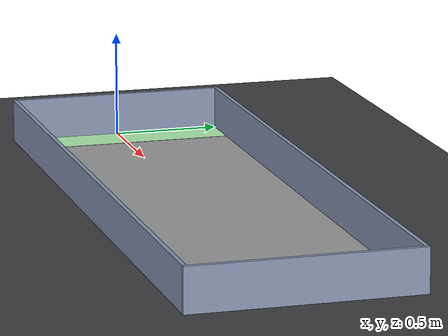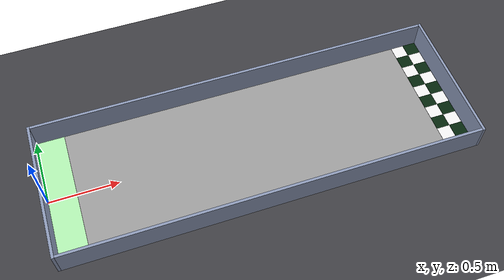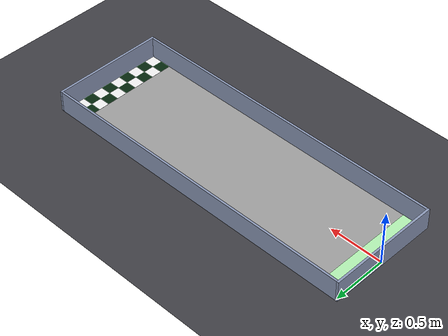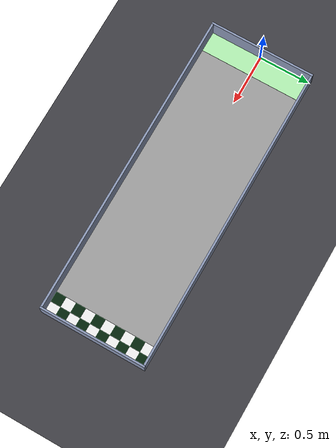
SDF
<?xml version="1.0" ?>
<sdf version="1.8">
  <world name="competition_arena">

    <physics name="1ms" type="ignored">
      <max_step_size>0.001</max_step_size>
      <real_time_factor>1.0</real_time_factor>
    </physics>

    <plugin filename="ignition-gazebo-physics-system"
            name="ignition::gazebo::systems::Physics" />
    <!-- Serves /world/competition_arena/create, which spawn_boxes calls. -->
    <plugin filename="ignition-gazebo-user-commands-system"
            name="ignition::gazebo::systems::UserCommands" />
    <plugin filename="ignition-gazebo-scene-broadcaster-system"
            name="ignition::gazebo::systems::SceneBroadcaster" />
    <!-- Renders the robot's camera. -->
    <plugin filename="ignition-gazebo-sensors-system"
            name="ignition::gazebo::systems::Sensors">
      <render_engine>ogre2</render_engine>
    </plugin>

    <!-- Runs the robot's IMU. -->
    <plugin filename="ignition-gazebo-imu-system"
            name="ignition::gazebo::systems::Imu" />

    <gravity>0 0 -9.8</gravity>

    <scene>
      <ambient>0.85 0.85 0.85 1</ambient>
      <background>0.80 0.82 0.86 1</background>
      <shadows>false</shadows>
    </scene>

    <!-- Bright and near-vertical with shadows off, so a box's colour does not depend
         on where it stands or which way the robot sees it from. -->
    <light type="directional" name="sun">
      <cast_shadows>false</cast_shadows>
      <pose>1.5 0 8 0 0 0</pose>
      <diffuse>0.9 0.9 0.9 1</diffuse>
      <specular>0.1 0.1 0.1 1</specular>
      <direction>-0.1 0.1 -0.95</direction>
    </light>

    <!-- Everything outside the track. -->
    <model name="ground_plane">
      <static>true</static>
      <link name="link">
        <collision name="collision">
          <geometry>
            <plane><normal>0 0 1</normal><size>20 20</size></plane>
          </geometry>
          <surface>
            <friction><ode><mu>1.0</mu><mu2>1.0</mu2></ode></friction>
          </surface>
        </collision>
        <visual name="visual">
          <geometry>
            <plane><normal>0 0 1</normal><size>20 20</size></plane>
          </geometry>
          <material>
            <ambient>0.25 0.25 0.27 1</ambient>
            <diffuse>0.25 0.25 0.27 1</diffuse>
            <specular>0 0 0 1</specular>
          </material>
        </visual>
      </link>
    </model>

    <!-- The track surface and its zones are visual only, stacked a millimetre apart
         to avoid z-fighting. The robot drives on the ground plane's collision. -->
    <model name="track_surface">
      <static>true</static>
      <link name="link">
        <visual name="floor">
          <pose>1.5 0 0.0005 0 0 0</pose>
          <geometry><box><size>3.0 1.0 0.001</size></box></geometry>
          <material>
            <ambient>0.62 0.62 0.62 1</ambient>
            <diffuse>0.62 0.62 0.62 1</diffuse>
            <specular>0 0 0 1</specular>
          </material>
        </visual>
        <!-- Start: the first 0.2 m, light green. -->
        <visual name="start_zone">
          <pose>0.1 0 0.0015 0 0 0</pose>
          <geometry><box><size>0.2 1.0 0.001</size></box></geometry>
          <material>
            <ambient>0.70 0.95 0.70 1</ambient>
            <diffuse>0.70 0.95 0.70 1</diffuse>
            <specular>0 0 0 1</specular>
          </material>
        </visual>
        <!-- Finish: the last 0.2 m, white under dark green 0.1 m checks. -->
        <visual name="finish_zone">
          <pose>2.9 0 0.001 0 0 0</pose>
          <geometry><box><size>0.2 1.0 0.001</size></box></geometry>
          <material>
            <ambient>0.95 0.95 0.95 1</ambient>
            <diffuse>0.95 0.95 0.95 1</diffuse>
            <specular>0 0 0 1</specular>
          </material>
        </visual>
        <visual name="check_0">
          <pose>2.85 -0.45 0.0015 0 0 0</pose>
          <geometry><box><size>0.1 0.1 0.001</size></box></geometry>
          <material>
            <ambient>0.02 0.15 0.05 1</ambient>
            <diffuse>0.02 0.15 0.05 1</diffuse>
            <specular>0 0 0 1</specular>
          </material>
        </visual>
        <visual name="check_1">
          <pose>2.85 -0.25 0.0015 0 0 0</pose>
          <geometry><box><size>0.1 0.1 0.001</size></box></geometry>
          <material>
            <ambient>0.02 0.15 0.05 1</ambient>
            <diffuse>0.02 0.15 0.05 1</diffuse>
            <specular>0 0 0 1</specular>
          </material>
        </visual>
        <visual name="check_2">
          <pose>2.85 -0.05 0.0015 0 0 0</pose>
          <geometry><box><size>0.1 0.1 0.001</size></box></geometry>
          <material>
            <ambient>0.02 0.15 0.05 1</ambient>
            <diffuse>0.02 0.15 0.05 1</diffuse>
            <specular>0 0 0 1</specular>
          </material>
        </visual>
        <visual name="check_3">
          <pose>2.85 0.15 0.0015 0 0 0</pose>
          <geometry><box><size>0.1 0.1 0.001</size></box></geometry>
          <material>
            <ambient>0.02 0.15 0.05 1</ambient>
            <diffuse>0.02 0.15 0.05 1</diffuse>
            <specular>0 0 0 1</specular>
          </material>
        </visual>
        <visual name="check_4">
          <pose>2.85 0.35 0.0015 0 0 0</pose>
          <geometry><box><size>0.1 0.1 0.001</size></box></geometry>
          <material>
            <ambient>0.02 0.15 0.05 1</ambient>
            <diffuse>0.02 0.15 0.05 1</diffuse>
            <specular>0 0 0 1</specular>
          </material>
        </visual>
        <visual name="check_5">
          <pose>2.95 -0.35 0.0015 0 0 0</pose>
          <geometry><box><size>0.1 0.1 0.001</size></box></geometry>
          <material>
            <ambient>0.02 0.15 0.05 1</ambient>
            <diffuse>0.02 0.15 0.05 1</diffuse>
            <specular>0 0 0 1</specular>
          </material>
        </visual>
        <visual name="check_6">
          <pose>2.95 -0.15 0.0015 0 0 0</pose>
          <geometry><box><size>0.1 0.1 0.001</size></box></geometry>
          <material>
            <ambient>0.02 0.15 0.05 1</ambient>
            <diffuse>0.02 0.15 0.05 1</diffuse>
            <specular>0 0 0 1</specular>
          </material>
        </visual>
        <visual name="check_7">
          <pose>2.95 0.05 0.0015 0 0 0</pose>
          <geometry><box><size>0.1 0.1 0.001</size></box></geometry>
          <material>
            <ambient>0.02 0.15 0.05 1</ambient>
            <diffuse>0.02 0.15 0.05 1</diffuse>
            <specular>0 0 0 1</specular>
          </material>
        </visual>
        <visual name="check_8">
          <pose>2.95 0.25 0.0015 0 0 0</pose>
          <geometry><box><size>0.1 0.1 0.001</size></box></geometry>
          <material>
            <ambient>0.02 0.15 0.05 1</ambient>
            <diffuse>0.02 0.15 0.05 1</diffuse>
            <specular>0 0 0 1</specular>
          </material>
        </visual>
        <visual name="check_9">
          <pose>2.95 0.45 0.0015 0 0 0</pose>
          <geometry><box><size>0.1 0.1 0.001</size></box></geometry>
          <material>
            <ambient>0.02 0.15 0.05 1</ambient>
            <diffuse>0.02 0.15 0.05 1</diffuse>
            <specular>0 0 0 1</specular>
          </material>
        </visual>
      </link>
    </model>

    <!-- Walls 0.2 m high, 0.02 m thick, outside the 3.0 x 1.0 m track. -->
    <model name="walls">
      <static>true</static>
      <link name="link">
        <collision name="wall_start_collision">
          <pose>-0.01 0 0.1 0 0 0</pose>
          <geometry><box><size>0.02 1.04 0.2</size></box></geometry>
        </collision>
        <visual name="wall_start_visual">
          <pose>-0.01 0 0.1 0 0 0</pose>
          <geometry><box><size>0.02 1.04 0.2</size></box></geometry>
          <material>
            <ambient>0.55 0.60 0.72 1</ambient>
            <diffuse>0.55 0.60 0.72 1</diffuse>
            <specular>0.02 0.02 0.02 1</specular>
          </material>
        </visual>
        <collision name="wall_finish_collision">
          <pose>3.01 0 0.1 0 0 0</pose>
          <geometry><box><size>0.02 1.04 0.2</size></box></geometry>
        </collision>
        <visual name="wall_finish_visual">
          <pose>3.01 0 0.1 0 0 0</pose>
          <geometry><box><size>0.02 1.04 0.2</size></box></geometry>
          <material>
            <ambient>0.55 0.60 0.72 1</ambient>
            <diffuse>0.55 0.60 0.72 1</diffuse>
            <specular>0.02 0.02 0.02 1</specular>
          </material>
        </visual>
        <collision name="wall_left_collision">
          <pose>1.5 0.51 0.1 0 0 0</pose>
          <geometry><box><size>3.0 0.02 0.2</size></box></geometry>
        </collision>
        <visual name="wall_left_visual">
          <pose>1.5 0.51 0.1 0 0 0</pose>
          <geometry><box><size>3.0 0.02 0.2</size></box></geometry>
          <material>
            <ambient>0.55 0.60 0.72 1</ambient>
            <diffuse>0.55 0.60 0.72 1</diffuse>
            <specular>0.02 0.02 0.02 1</specular>
          </material>
        </visual>
        <collision name="wall_right_collision">
          <pose>1.5 -0.51 0.1 0 0 0</pose>
          <geometry><box><size>3.0 0.02 0.2</size></box></geometry>
        </collision>
        <visual name="wall_right_visual">
          <pose>1.5 -0.51 0.1 0 0 0</pose>
          <geometry><box><size>3.0 0.02 0.2</size></box></geometry>
          <material>
            <ambient>0.55 0.60 0.72 1</ambient>
            <diffuse>0.55 0.60 0.72 1</diffuse>
            <specular>0.02 0.02 0.02 1</specular>
          </material>
        </visual>
      </link>
    </model>

  </world>
</sdf>
